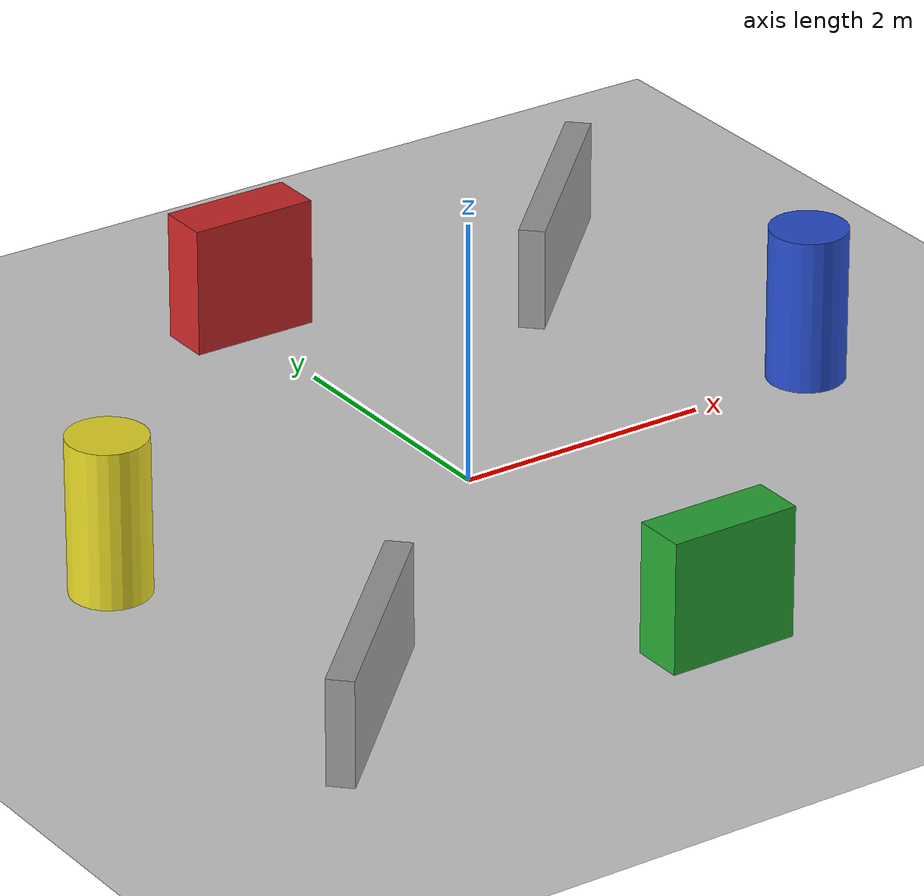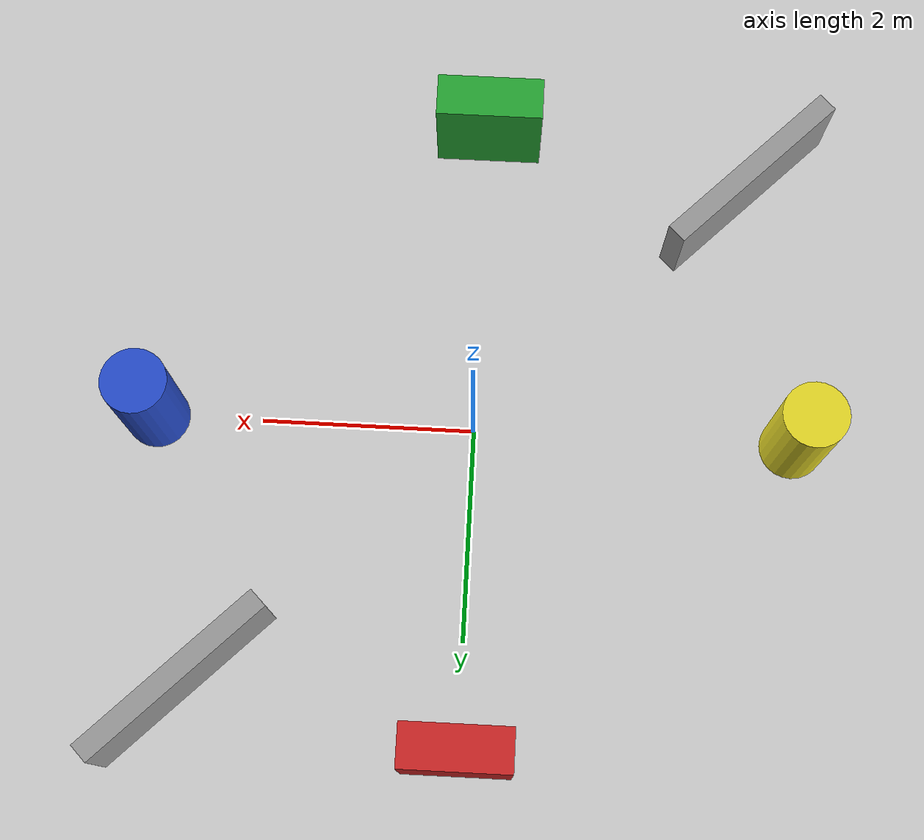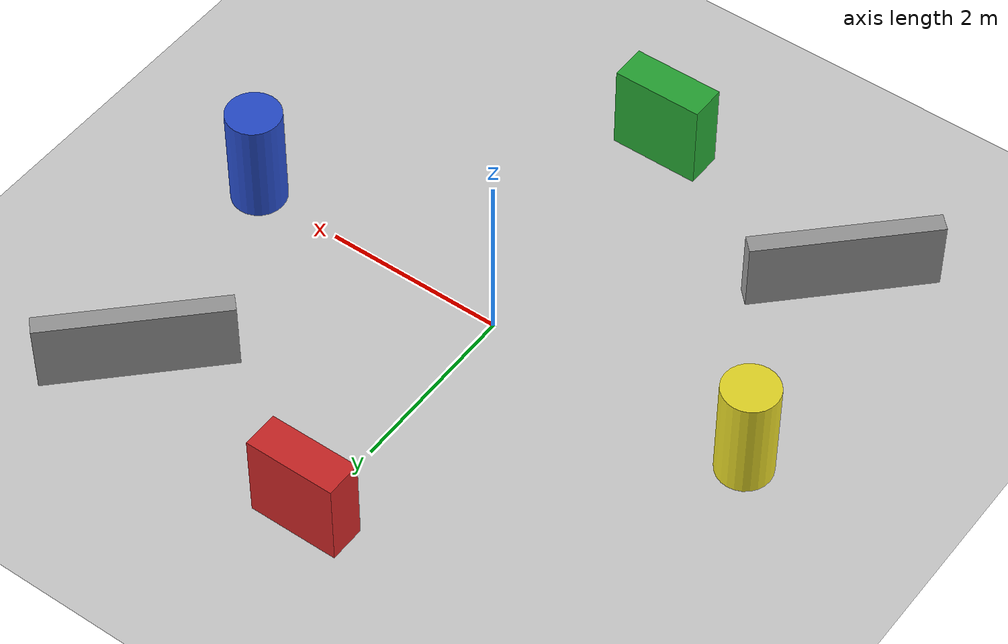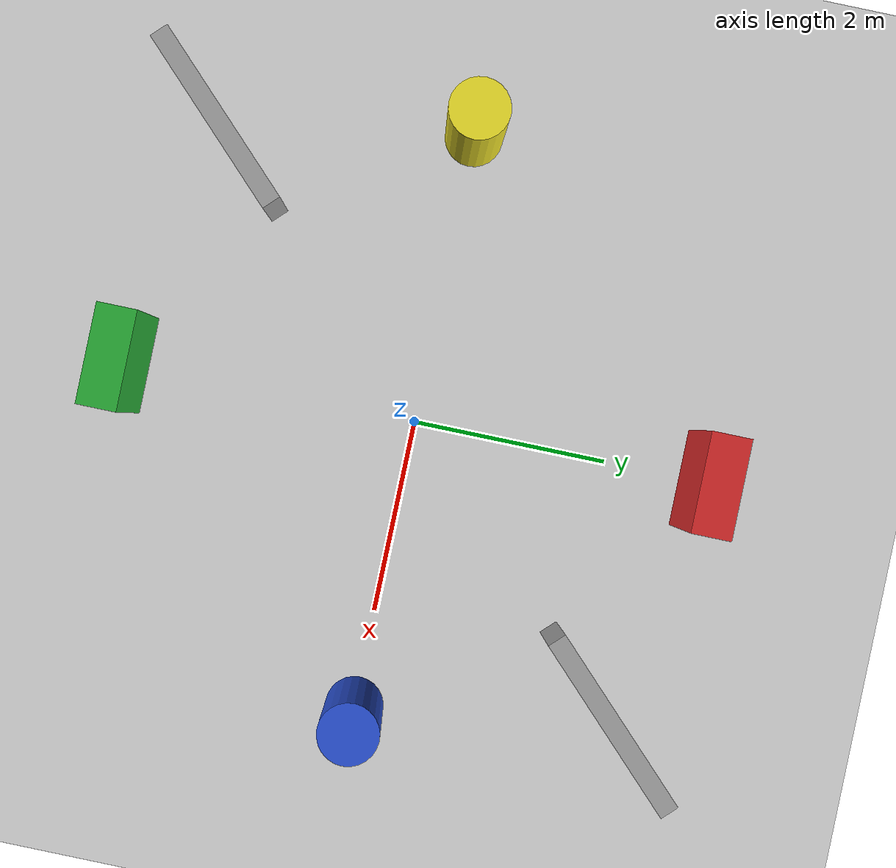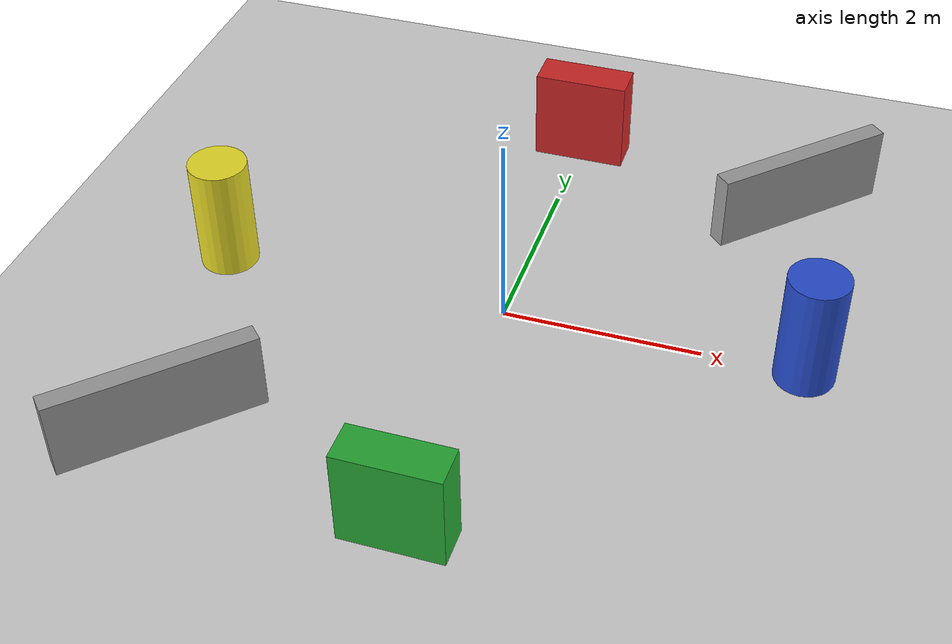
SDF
<?xml version="1.0" ?>
<sdf version="1.6">
  <world name="sensores">

    <include><uri>model://ground_plane</uri></include>
    <include><uri>model://sun</uri></include>

    <!-- Origem geografica do GPS (Joao Pessoa - PB). Eixo X = Leste, Y = Norte (ENU). -->
    <spherical_coordinates>
      <surface_model>EARTH_WGS84</surface_model>
      <latitude_deg>-7.1375</latitude_deg>
      <longitude_deg>-34.8450</longitude_deg>
      <elevation>40.0</elevation>
      <heading_deg>0</heading_deg>
    </spherical_coordinates>

    <!-- Publica /gazebo/model_states (pose real, sem ruido) para ground truth -->
    <plugin name="gazebo_ros_state" filename="libgazebo_ros_state.so">
      <ros>
        <namespace>/gazebo</namespace>
      </ros>
      <update_rate>50.0</update_rate>
    </plugin>

    <physics type="ode">
      <max_step_size>0.001</max_step_size>
      <real_time_factor>1.0</real_time_factor>
      <real_time_update_rate>1000</real_time_update_rate>
    </physics>

    <!-- Obstaculos ao redor da trajetoria em 8 (x em [-1,1], y em [-1,1]) -->
    <model name="caixa_norte">
      <static>true</static>
      <pose>0 3.0 0.5 0 0 0</pose>
      <link name="link">
        <collision name="c"><geometry><box><size>1.0 0.4 1.0</size></box></geometry></collision>
        <visual name="v"><geometry><box><size>1.0 0.4 1.0</size></box></geometry>
          <material><script><uri>file://media/materials/scripts/gazebo.material</uri><name>Gazebo/Red</name></script></material></visual>
      </link>
    </model>

    <model name="caixa_sul">
      <static>true</static>
      <pose>0 -3.0 0.5 0 0 0</pose>
      <link name="link">
        <collision name="c"><geometry><box><size>1.0 0.4 1.0</size></box></geometry></collision>
        <visual name="v"><geometry><box><size>1.0 0.4 1.0</size></box></geometry>
          <material><script><uri>file://media/materials/scripts/gazebo.material</uri><name>Gazebo/Green</name></script></material></visual>
      </link>
    </model>

    <model name="cilindro_leste">
      <static>true</static>
      <pose>3.0 0 0.6 0 0 0</pose>
      <link name="link">
        <collision name="c"><geometry><cylinder><radius>0.3</radius><length>1.2</length></cylinder></geometry></collision>
        <visual name="v"><geometry><cylinder><radius>0.3</radius><length>1.2</length></cylinder></geometry>
          <material><script><uri>file://media/materials/scripts/gazebo.material</uri><name>Gazebo/Blue</name></script></material></visual>
      </link>
    </model>

    <model name="cilindro_oeste">
      <static>true</static>
      <pose>-3.0 0 0.6 0 0 0</pose>
      <link name="link">
        <collision name="c"><geometry><cylinder><radius>0.3</radius><length>1.2</length></cylinder></geometry></collision>
        <visual name="v"><geometry><cylinder><radius>0.3</radius><length>1.2</length></cylinder></geometry>
          <material><script><uri>file://media/materials/scripts/gazebo.material</uri><name>Gazebo/Yellow</name></script></material></visual>
      </link>
    </model>

    <model name="parede_ne">
      <static>true</static>
      <pose>2.5 2.5 0.4 0 0 0.785</pose>
      <link name="link">
        <collision name="c"><geometry><box><size>2.0 0.2 0.8</size></box></geometry></collision>
        <visual name="v"><geometry><box><size>2.0 0.2 0.8</size></box></geometry>
          <material><script><uri>file://media/materials/scripts/gazebo.material</uri><name>Gazebo/Grey</name></script></material></visual>
      </link>
    </model>

    <model name="parede_so">
      <static>true</static>
      <pose>-2.5 -2.5 0.4 0 0 0.785</pose>
      <link name="link">
        <collision name="c"><geometry><box><size>2.0 0.2 0.8</size></box></geometry></collision>
        <visual name="v"><geometry><box><size>2.0 0.2 0.8</size></box></geometry>
          <material><script><uri>file://media/materials/scripts/gazebo.material</uri><name>Gazebo/Grey</name></script></material></visual>
      </link>
    </model>

  </world>
</sdf>
